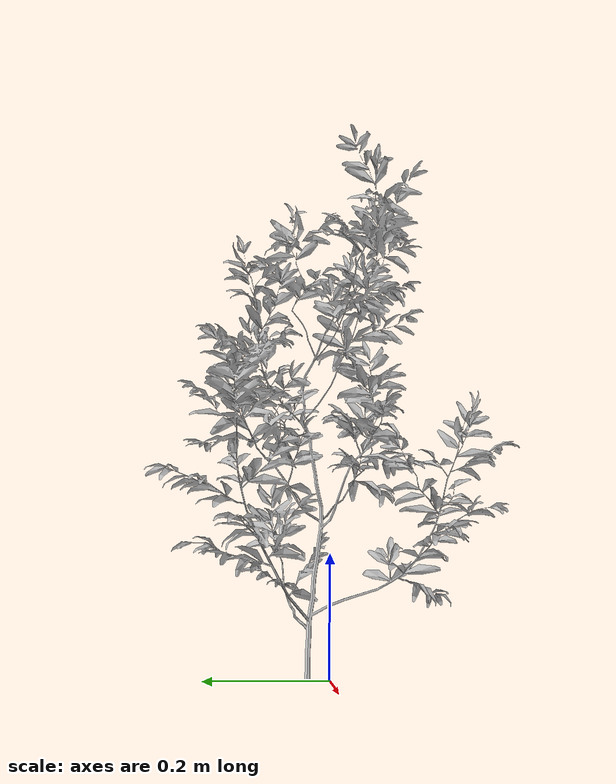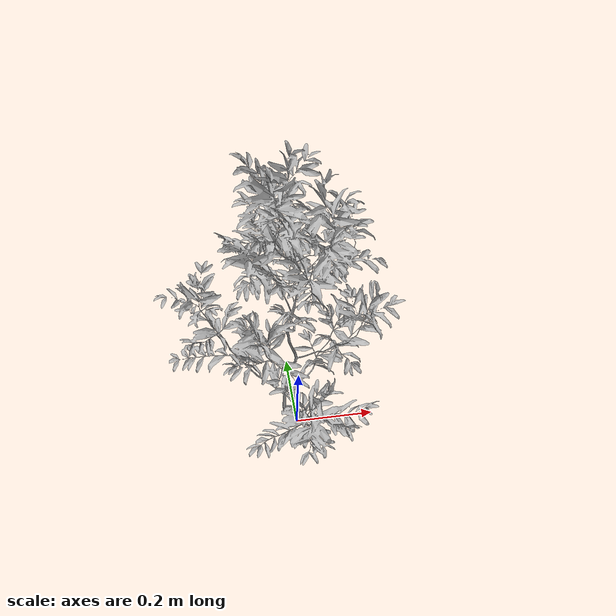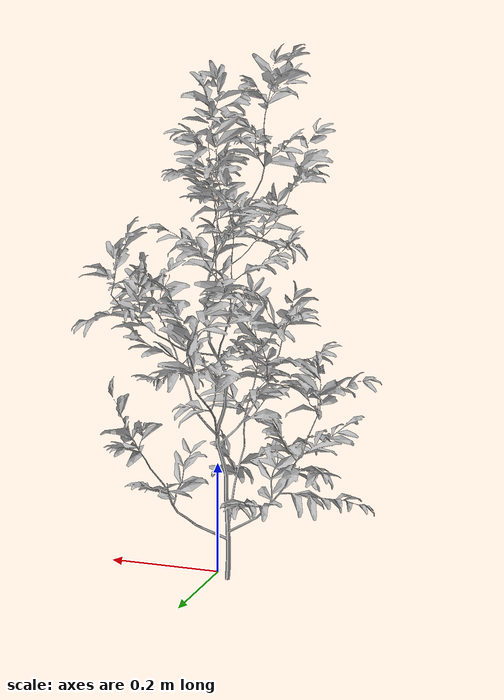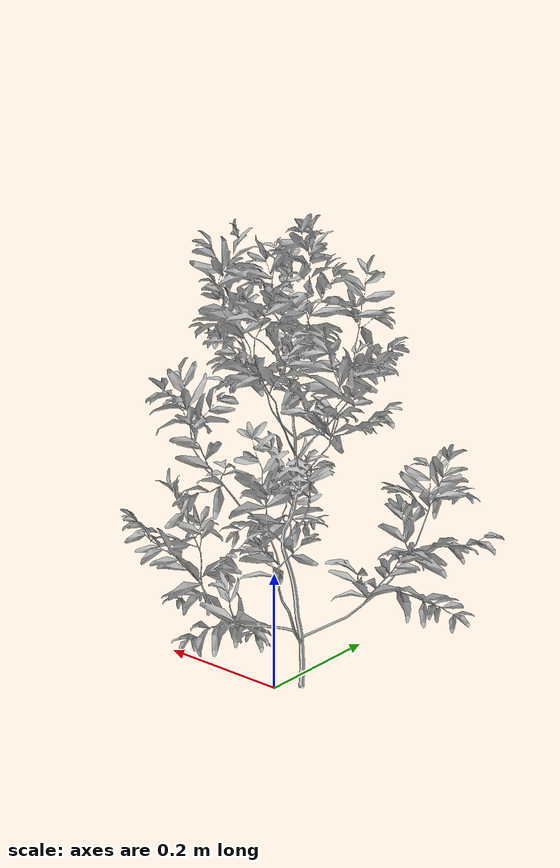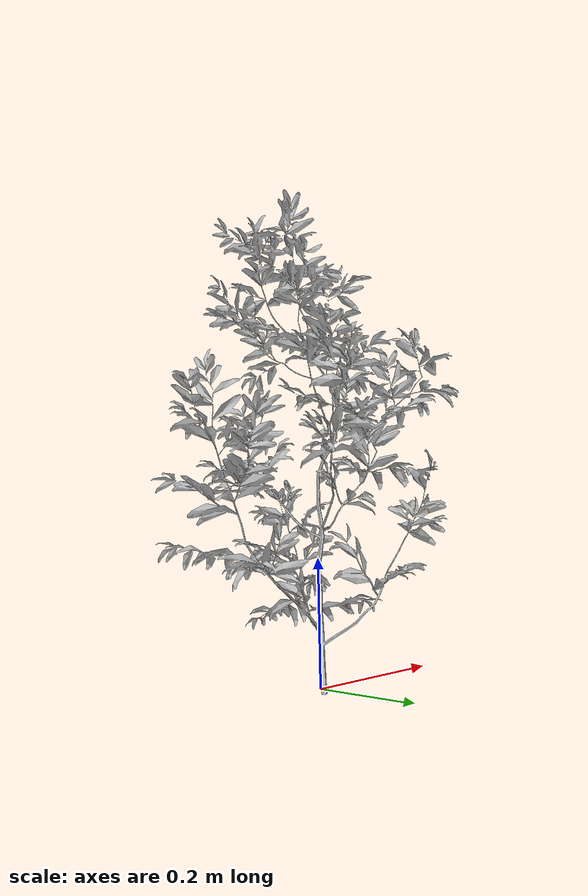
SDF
<?xml version="1.0" ?>
<sdf version="1.6">
  <model name="new_shrub_6">
    <static>true</static>
    <link name="link">
      <collision name="collision">
        <geometry>
          <mesh>
            <uri>model://new_shrub_6/meshes/new_shrub_6.obj</uri>
            <scale>1 1 1</scale>
          </mesh>
        </geometry>
      </collision>
      <visual name="visual">
        <geometry>
          <mesh>
            <uri>model://new_shrub_6/meshes/new_shrub_6.obj</uri>
            <scale>1 1 1</scale>
          </mesh>
        </geometry>
      </visual>
    </link>
  </model>
</sdf>
